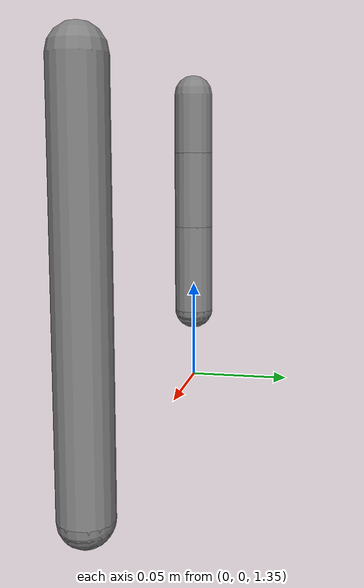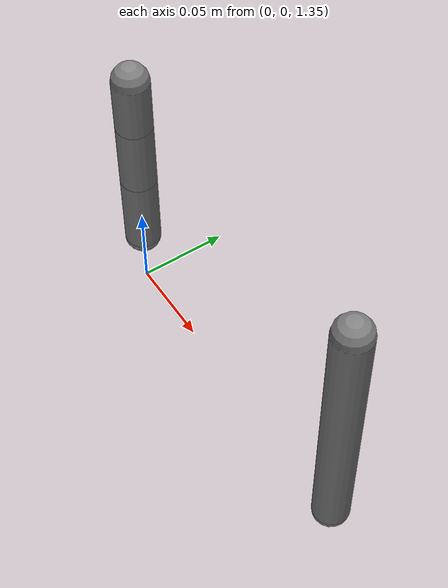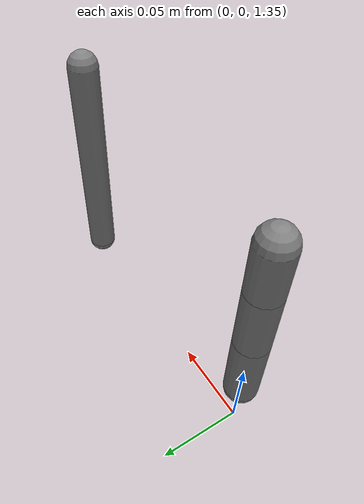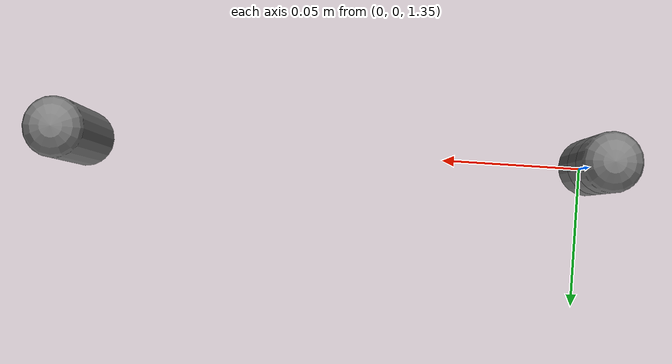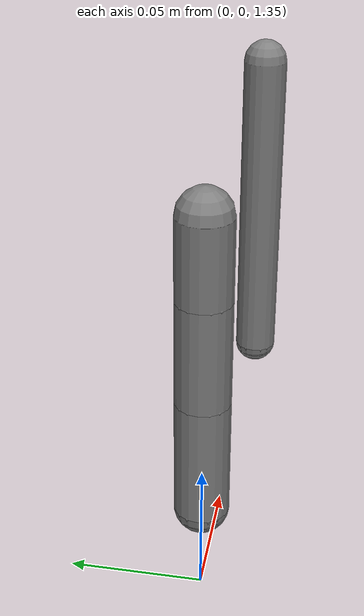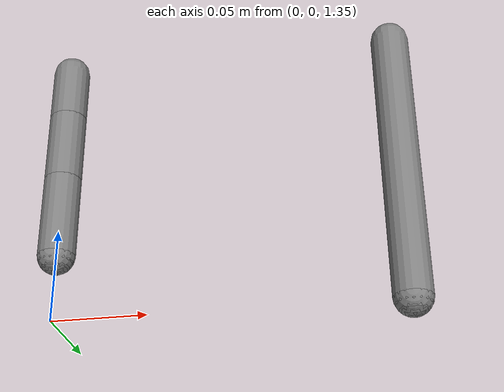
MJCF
<?xml version="1.0" encoding="UTF-8"?>
<mujoco model="optimus">

    <option timestep="1e-4" gravity="0 0 -9.8"/>

    <worldbody>
        <light pos="0 0 10"/>

        <!-- ground plane -->
        <geom type="plane" size="0.5 0.5 0.1" rgba="0.8 0.8 0.8 1"/>

        <!-- LEFT BRANCH -->
        <body name="ABC1P" pos="0 0 1.5" euler="90 0 0">
            <joint name="A" type="hinge" axis="0 0 1"/>

            <geom type="capsule" fromto="0 0 0 0 -0.03 0" size="0.01"/>
            <body name="BC1" pos="0 -0.03 0">
                <joint name="B" type="hinge" axis="0 0 1" damping="0.1"/>

                <geom type="capsule" fromto="0 0 0 0 -0.039 0" size="0.01"/>
                <site name="sC1" size="0.01" pos="0 -0.039 0"/>

                <body name="CP" pos="0 -0.039 0">
                    <geom type="capsule" fromto="0 0 0 0 -0.045 0" size="0.01"/>
                    <site name="sP" size="0.01" pos="0 -0.045 0"/>
                </body>
            </body>
        </body>

        <!-- RIGHT BRANCH -->
        <body name="DC2" pos="0.18 0 1.5" euler="90 0 0">
            <joint name="D" type="hinge" axis="0 0 1" damping="0.1"/>
            <geom type="capsule" fromto="0 0 0 0 -0.15 0" size="0.01"/>
            <site name="sC2" size="0.01" pos="0 -0.15 0"/>
        </body>

    </worldbody>

    <!-- LOOP CLOSURE -->
    <equality>
        <connect site1="sC1" site2="sC2"/>
    </equality>

    <!-- ACTUATOR -->
    <actuator>
        <motor name="A_motor" joint="A" ctrlrange="-5 5" gear="1"/>
    </actuator>

    <!-- SENSORS -->
    <sensor>
        <jointpos name="q1_pos" joint="A"/>
        <jointvel name="q1_vel" joint="A"/>
        <framepos name="P_pos" objtype="site" objname="sP"/>
    </sensor>

</mujoco>
